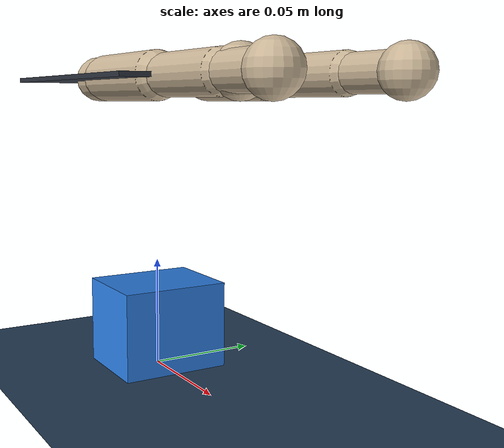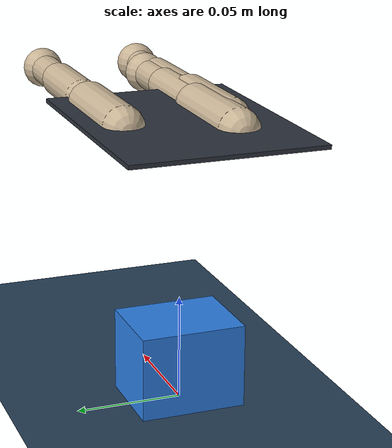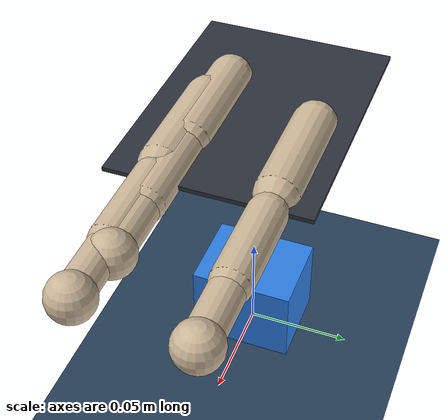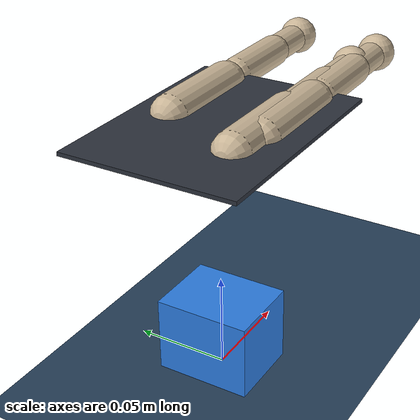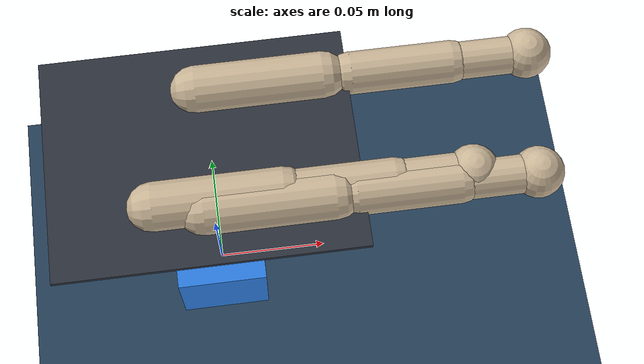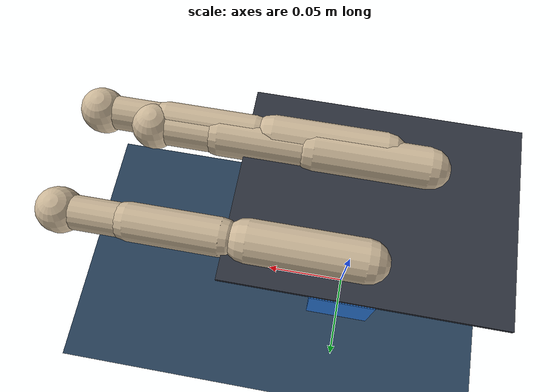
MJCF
<mujoco model="scene_prism1_tp0d0098p0d0083p0d0025_ip0d0003n0d0034p0d0110_mn0d0012p0d0065p0d0080">
  <compiler angle="radian" autolimits="true" />
  <option timestep="0.002" gravity="0 0 -9.81" integrator="implicitfast" />
  <visual>
    <headlight ambient=".4 .4 .4" diffuse=".8 .8 .8" specular="0.1 0.1 0.1" />
    <map znear=".01" />
    <quality shadowsize="2048" />
    <global elevation="-15" />
  </visual>
  <default>
    <geom friction="1.8 0.15 0.01" solref="0.006 1" solimp="0.97 0.995 0.0005" />
    <motor ctrlrange="-1 1" ctrllimited="true" />
    <default class="pose">
      <joint damping="2.0" armature="0.01" />
      <position kp="4000" kv="100" forcerange="-1000 1000" />
    </default>
    <default class="ctrl">
      <joint damping="0.5" armature="0.001" />
      <position kp="30" kv="0.5" gear="1" forcerange="-10 10" ctrlrange="-1 1" />
    </default>
  </default>
  <asset>
    <texture type="skybox" builtin="gradient" rgb1="0.3 0.5 0.7" rgb2="0 0 0" width="512" height="3072" />
    <texture type="2d" name="groundplane" builtin="checker" mark="edge" rgb1="0.2 0.3 0.4" rgb2="0.1 0.2 0.3" markrgb="0.8 0.8 0.8" width="300" height="300" />
    <material name="groundplane" texture="groundplane" texuniform="true" texrepeat="5 5" reflectance="0.2" />
    <texture name="grid" type="2d" builtin="checker" rgb1="0.15 0.15 0.15" rgb2="0.25 0.25 0.25" width="256" height="256" />
    <material name="table_mat" texture="grid" texrepeat="3 3" reflectance="0.2" />
    <material name="palm_mat" rgba="0.18 0.2 0.24 1" />
    <material name="finger_mat" rgba="0.8 0.72 0.6 1" />
    <material name="object_mat" rgba="0.18 0.5 0.9 1" />
  </asset>
  <worldbody>
    <light pos="0 0 1.5" dir="0 0 -1" directional="true" diffuse=".6 .6 .6" specular=".2 .2 .2" />
    <light pos="0.5 0.5 1.0" dir="-1 -1 -1" directional="true" diffuse=".4 .4 .4" specular=".1 .1 .1" />
    <geom name="floor" type="plane" size="1.5 1.5 0.1" material="groundplane" />
    <body name="cube" pos="0.000000 0.000000 0.020000">
      <freejoint />
      <geom type="box" size="0.020000 0.025000 0.020000" density="500" material="object_mat" friction="2.4 0.2 0.02" />
    </body>
    <body gravcomp="1" name="palm_pose" pos="0 0 0.134">
      <joint class="pose" name="palm_px" type="slide" axis="1 0 0" range="-0.20 0.20" />
      <joint class="pose" name="palm_py" type="slide" axis="0 1 0" range="-0.20 0.20" />
      <joint class="pose" name="palm_pz" type="slide" axis="0 0 1" range="-0.15 0.35" />
      <joint class="pose" name="palm_rx" type="hinge" axis="1 0 0" range="-1.57 1.57" />
      <joint class="pose" name="palm_ry" type="hinge" axis="0 1 0" range="-1.57 1.57" />
      <joint class="pose" name="palm_rz" type="hinge" axis="0 0 1" range="-3.14 3.14" />
      <geom type="box" size="0.06 0.045 0.001" material="palm_mat" />
      <body name="thumb_mount" pos="-0.02024 -0.019679 0">
        <inertial pos="0 0 0" mass="0.001" diaginertia="1e-6 1e-6 1e-6" />
        <body name="thumb_yaw_frame">
          <inertial pos="0 0 0" mass="0.001" diaginertia="1e-6 1e-6 1e-6" />
          <joint class="ctrl" name="thumb_yaw" type="hinge" axis="1 0 0" range="-1.1 1.1" />
          <body name="thumb_mcp_frame">
            <joint class="ctrl" name="thumb_mcp" type="hinge" axis="0 1 0" range="0 3.14" />
            <geom type="capsule" fromto="0 0 0 0.05 0 0" size="0.010" material="finger_mat" />
            <body name="thumb_len_frame" pos="0.052489 0 0">
              <geom type="capsule" fromto="0 0 0 0.04 0 0" size="0.0085" material="finger_mat" />
              <body name="thumb_pip_frame" pos="0.04 0 0">
                <joint class="ctrl" name="thumb_pip" type="hinge" axis="0 1 0" range="-1.2 0.5" />
                <geom type="capsule" fromto="0 0 0 0.03 0 0" size="0.0075" material="finger_mat" />
                <body name="thumb_tip" pos="0.03 0 0">
                  <geom type="sphere" size="0.010" material="finger_mat" friction="2.4 0.2 0.02" />
                  <geom type="sphere" pos="0 0.004 0" size="0.005" material="finger_mat" friction="2.4 0.2 0.02" />
                  <geom type="sphere" pos="0 -0.004 0" size="0.005" material="finger_mat" friction="2.4 0.2 0.02" />
                </body>
              </body>
            </body>
          </body>
        </body>
      </body>
      <body name="index_mount" pos="0.000336 0.02664 0">
        <inertial pos="0 0 0" mass="0.001" diaginertia="1e-6 1e-6 1e-6" />
        <body name="index_yaw_frame">
          <inertial pos="0 0 0" mass="0.001" diaginertia="1e-6 1e-6 1e-6" />
          <joint class="ctrl" name="index_yaw" type="hinge" axis="1 0 0" range="-1.1 1.1" />
          <body name="index_mcp_frame">
            <joint class="ctrl" name="index_mcp" type="hinge" axis="0 1 0" range="0 2.5" />
            <geom type="capsule" fromto="0 0 0 0.05 0 0" size="0.010" material="finger_mat" />
            <body name="index_len_frame" pos="0.061046 0 0">
              <geom type="capsule" fromto="0 0 0 0.04 0 0" size="0.0085" material="finger_mat" />
              <body name="index_pip_frame" pos="0.04 0 0">
                <joint class="ctrl" name="index_pip" type="hinge" axis="0 1 0" range="-1.2 1.57" />
                <geom type="capsule" fromto="0 0 0 0.03 0 0" size="0.0075" material="finger_mat" />
                <body name="index_tip" pos="0.03 0 0">
                  <geom type="sphere" size="0.010" material="finger_mat" friction="2.4 0.2 0.02" />
                  <geom type="sphere" pos="0 0.004 0" size="0.005" material="finger_mat" friction="2.4 0.2 0.02" />
                  <geom type="sphere" pos="0 -0.004 0" size="0.005" material="finger_mat" friction="2.4 0.2 0.02" />
                </body>
              </body>
            </body>
          </body>
        </body>
      </body>
      <body name="middle_mount" pos="-0.00118 -0.023502 0">
        <inertial pos="0 0 0" mass="0.001" diaginertia="1e-6 1e-6 1e-6" />
        <body name="middle_yaw_frame">
          <inertial pos="0 0 0" mass="0.001" diaginertia="1e-6 1e-6 1e-6" />
          <joint class="ctrl" name="middle_yaw" type="hinge" axis="1 0 0" range="-1.1 1.1" />
          <body name="middle_mcp_frame">
            <joint class="ctrl" name="middle_mcp" type="hinge" axis="0 1 0" range="0 2.5" />
            <geom type="capsule" fromto="0 0 0 0.05 0 0" size="0.010" material="finger_mat" />
            <body name="middle_len_frame" pos="0.057986 0 0">
              <geom type="capsule" fromto="0 0 0 0.04 0 0" size="0.0085" material="finger_mat" />
              <body name="middle_pip_frame" pos="0.04 0 0">
                <joint class="ctrl" name="middle_pip" type="hinge" axis="0 1 0" range="-1.2 1.57" />
                <geom type="capsule" fromto="0 0 0 0.03 0 0" size="0.0075" material="finger_mat" />
                <body name="middle_tip" pos="0.03 0 0">
                  <geom type="sphere" size="0.010" material="finger_mat" friction="2.4 0.2 0.02" />
                  <geom type="sphere" pos="0 0.004 0" size="0.005" material="finger_mat" friction="2.4 0.2 0.02" />
                  <geom type="sphere" pos="0 -0.004 0" size="0.005" material="finger_mat" friction="2.4 0.2 0.02" />
                </body>
              </body>
            </body>
          </body>
        </body>
      </body>
    </body>
  </worldbody>
  <actuator>
    <position class="pose" name="a_palm_px" joint="palm_px" ctrlrange="-0.20 0.20" />
    <position class="pose" name="a_palm_py" joint="palm_py" ctrlrange="-0.20 0.20" />
    <position class="pose" name="a_palm_pz" joint="palm_pz" ctrlrange="-0.15 0.35" />
    <position class="pose" name="a_palm_rx" joint="palm_rx" ctrlrange="-1.57 1.57" />
    <position class="pose" name="a_palm_ry" joint="palm_ry" ctrlrange="-1.57 1.57" />
    <position class="pose" name="a_palm_rz" joint="palm_rz" ctrlrange="-3.14 3.14" />
    <position class="ctrl" name="a_thumb_yaw" joint="thumb_yaw" ctrlrange="-1.1 1.1" />
    <position class="ctrl" name="a_thumb_mcp" joint="thumb_mcp" ctrlrange="0 3.14" />
    <position class="ctrl" name="a_thumb_pip" joint="thumb_pip" ctrlrange="-1.2 0.5" />
    <position class="ctrl" name="a_index_yaw" joint="index_yaw" ctrlrange="-1.1 1.1" />
    <position class="ctrl" name="a_index_mcp" joint="index_mcp" ctrlrange="0 2.5" />
    <position class="ctrl" name="a_index_pip" joint="index_pip" ctrlrange="-1.2 1.57" />
    <position class="ctrl" name="a_middle_yaw" joint="middle_yaw" ctrlrange="-1.1 1.1" />
    <position class="ctrl" name="a_middle_mcp" joint="middle_mcp" ctrlrange="0 2.5" />
    <position class="ctrl" name="a_middle_pip" joint="middle_pip" ctrlrange="-1.2 1.57" />
  </actuator>
  <keyframe>
    <key name="open" qpos="&#10;        0 0 0.02 1 0 0 0 0.02 0 0 0 0 0 0 2 -0.707 0 1.25 1 0 1.25 1&#10;      " ctrl="&#10;        0.02 0 0 0 0 0 0 2 -0.707 0 1.25 1 0 1.25 1&#10;      " />
    <key name="foundational" qpos="&#10;        -0.003355915138 -0.01787428545 0.03881301563 0.6066948474 0.2386390169 0.3384227694 0.6785593643 0.01999839882 -1.513705751e-07 -0.0004334244842 5.166867012e-06 -1.90388387e-06 7.172827663e-08 -0.2315372642 1.359239251 -1.130940645 -0.1417748383 1.548942958 0.958960109 0.1223262764 1.350442578 0.9717344318&#10;      " ctrl="&#10;        0.02 0 0 0 0 0 -0.02410344832 1.295251652 -1.130667947 -0.2642269152 1.489560509 0.9519330463 0.02387907029 1.48007747 1.012742737&#10;      " />
  </keyframe>
</mujoco>
